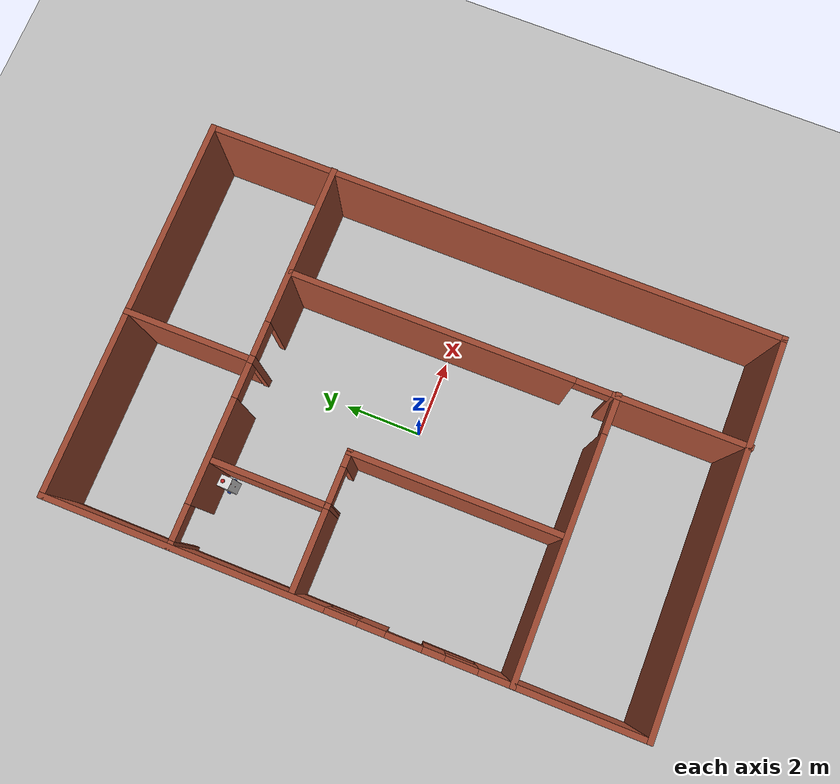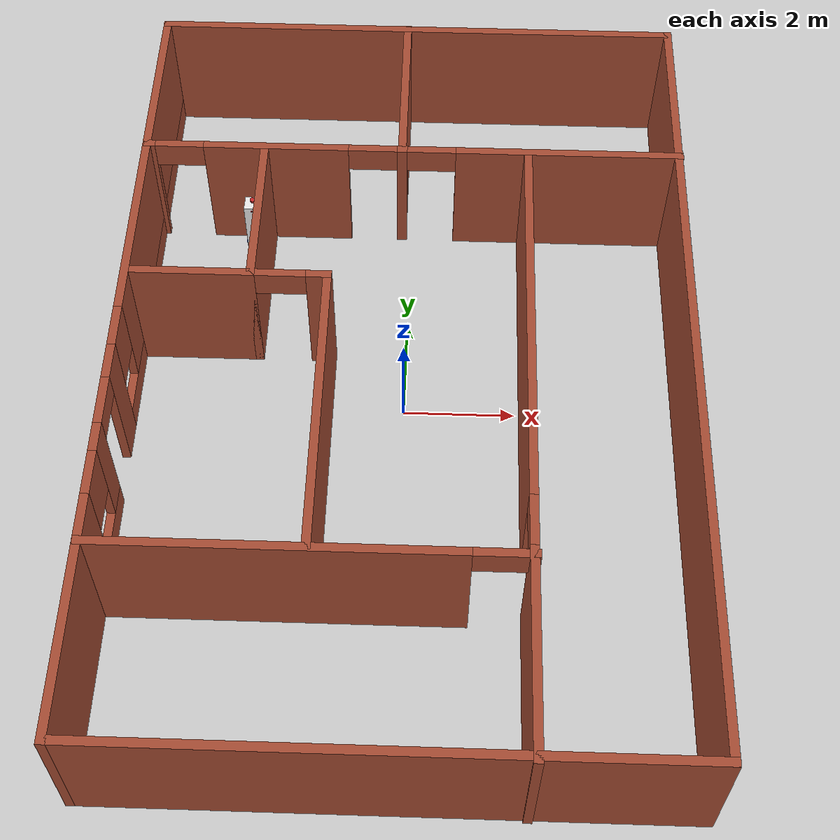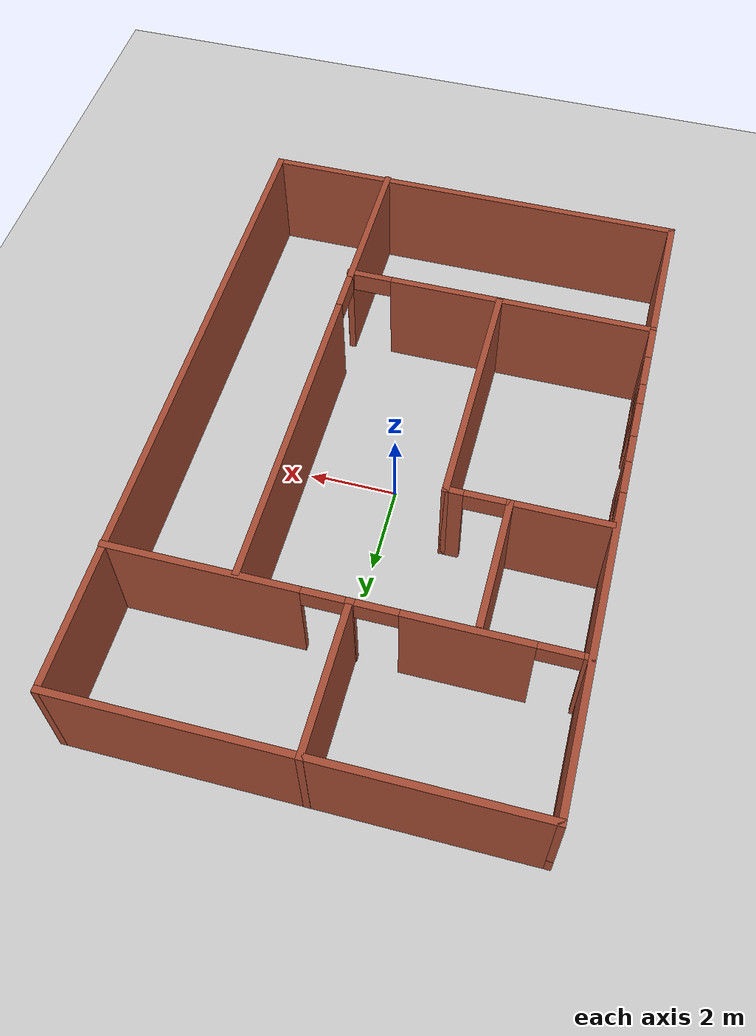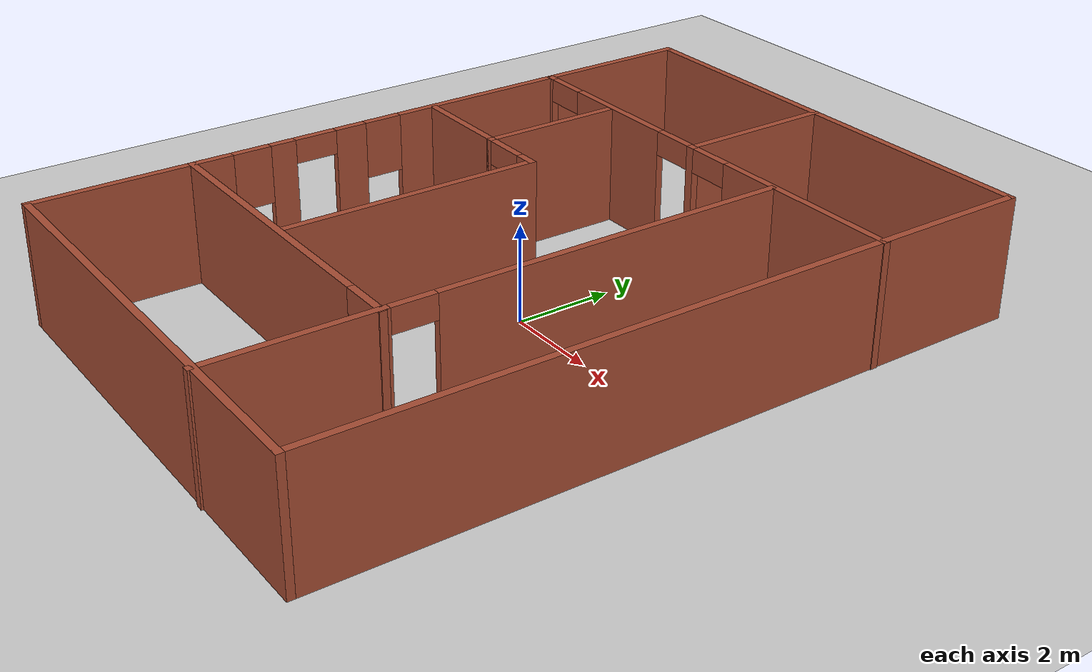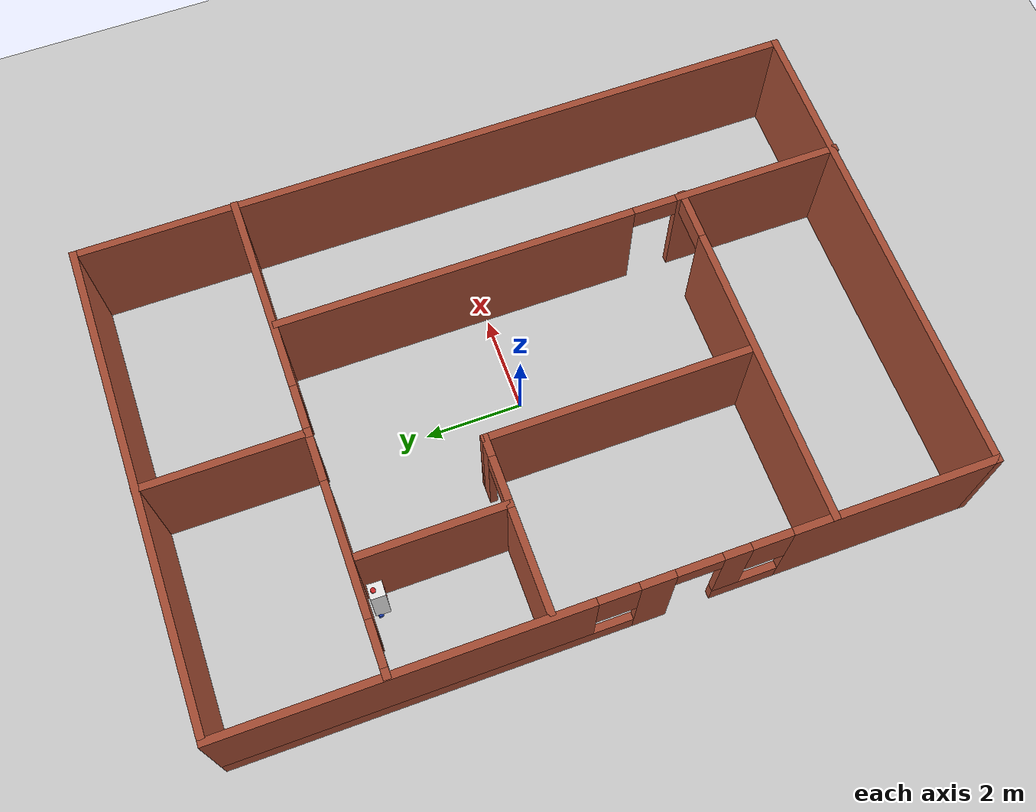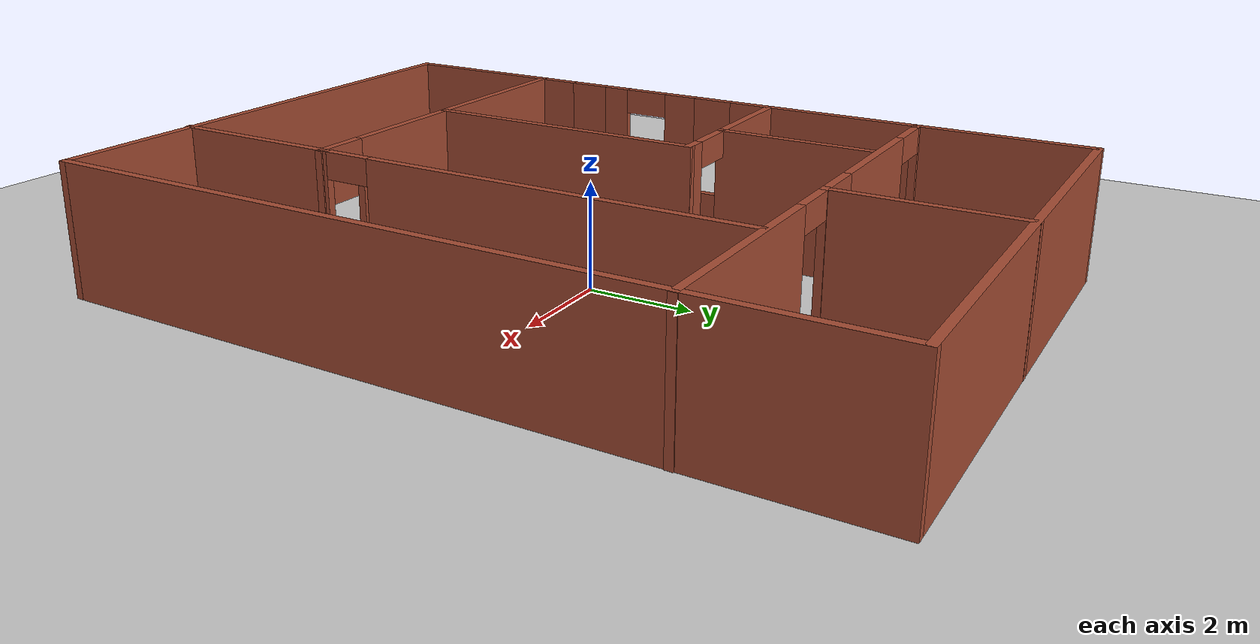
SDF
<sdf version="1.7">
 <world name="default">
  <light name="sun" type="directional">
   <pose>0 0 10 0 -0 0</pose>
   <diffuse>0.8 0.8 0.8 1</diffuse>
   <specular>0.2 0.2 0.2 1</specular>
   <attenuation>
    <range>1000</range>
    <constant>0.9</constant>
    <linear>0.01</linear>
    <quadratic>0.001</quadratic>
   </attenuation>
   <direction>-0.5 0.1 -0.9</direction>
   <spot><inner_angle>0</inner_angle><outer_angle>0</outer_angle><falloff>0</falloff></spot>
  </light>
  <model name="ground_plane">
   <static>1</static>
   <link name="link">
    <collision name="collision">
     <geometry><plane><normal>0 0 1</normal><size>100 100</size></plane></geometry>
     <surface><friction><ode><mu>100</mu><mu2>50</mu2></ode></friction></surface>
    </collision>
    <visual name="visual">
     <cast_shadows>0</cast_shadows>
     <geometry><plane><normal>0 0 1</normal><size>100 100</size></plane></geometry>
     <material>
      <script><uri>file://media/materials/scripts/gazebo.material</uri><name>Gazebo/Grey</name></script>
     </material>
    </visual>
   </link>
  </model>
  <gravity>0 0 -9.8</gravity>
  <magnetic_field>6e-06 2.3e-05 -4.2e-05</magnetic_field>
  <atmosphere type="adiabatic"/>
  <physics type="ode">
   <max_step_size>0.001</max_step_size>
   <real_time_factor>1</real_time_factor>
   <real_time_update_rate>1000</real_time_update_rate>
  </physics>
  <scene><ambient>0.4 0.4 0.4 1</ambient><background>0.7 0.7 0.7 1</background><shadows>1</shadows></scene>
  <spherical_coordinates>
   <surface_model>EARTH_WGS84</surface_model>
   <latitude_deg>0</latitude_deg>
   <longitude_deg>0</longitude_deg>
   <elevation>0</elevation>
   <heading_deg>0</heading_deg>
  </spherical_coordinates>
  <model name="robot">
   <link name="base_link">
    <inertial>
     <pose>0.055714 0 0.221429 0 -0 0</pose>
     <mass>0.7</mass>
     <inertia>
      <ixx>0.165584</ixx>
      <ixy>0</ixy>
      <ixz>0.00676071</ixz>
      <iyy>0.166621</iyy>
      <iyz>0</iyz>
      <izz>0.00876214</izz>
     </inertia>
    </inertial>
    <collision name="base_link_fixed_joint_lump__chassis_collision">
     <pose>0.05 0 0.575 0 -0 0</pose>
     <geometry><box><size>0.3 0.3 1.15</size></box></geometry>
    </collision>
    <collision name="base_link_fixed_joint_lump__caster_wheel_collision_1">
     <pose>0.14 0 0 0 -0 0</pose>
     <geometry><sphere><radius>0.05</radius></sphere></geometry>
     <surface><friction><ode><mu>0.001</mu><mu2>0.001</mu2></ode></friction></surface>
    </collision>
    <collision name="base_link_fixed_joint_lump__laser_frame_collision_2">
     <pose>0 0 1.175 0 -0 0</pose>
     <geometry><cylinder><length>0.04</length><radius>0.05</radius></cylinder></geometry>
    </collision>
    <visual name="base_link_fixed_joint_lump__chassis_visual">
     <pose>0.05 0 0.575 0 -0 0</pose>
     <geometry><box><size>0.3 0.3 1.15</size></box></geometry>
     <material>
      <script><name>Gazebo/White</name><uri>file://media/materials/scripts/gazebo.material</uri></script>
     </material>
    </visual>
    <visual name="base_link_fixed_joint_lump__camera1_link_visual_1">
     <pose>0.205 0 1.08 0 0.174533 0</pose>
     <geometry><box><size>0.01 0.03 0.03</size></box></geometry>
     <material>
      <script><name>Gazebo/Red</name><uri>file://media/materials/scripts/gazebo.material</uri></script>
     </material>
    </visual>
    <visual name="base_link_fixed_joint_lump__camera2_link_visual_2">
     <pose>0.205 0 0.58 0 0.174533 0</pose>
     <geometry><box><size>0.01 0.03 0.03</size></box></geometry>
     <material>
      <script><name>Gazebo/Red</name><uri>file://media/materials/scripts/gazebo.material</uri></script>
     </material>
    </visual>
    <visual name="base_link_fixed_joint_lump__caster_wheel_visual_3">
     <pose>0.14 0 0 0 -0 0</pose>
     <geometry><sphere><radius>0.05</radius></sphere></geometry>
     <material>
      <script><name>Gazebo/Black</name><uri>file://media/materials/scripts/gazebo.material</uri></script>
     </material>
    </visual>
    <visual name="base_link_fixed_joint_lump__laser_frame_visual_4">
     <pose>0 0 1.175 0 -0 0</pose>
     <geometry><cylinder><length>0.04</length><radius>0.05</radius></cylinder></geometry>
     <material>
      <script><name>Gazebo/Red</name><uri>file://media/materials/scripts/gazebo.material</uri></script>
     </material>
    </visual>
    <sensor name="camera1_sensor" type="camera">
     <visualize>1</visualize>
     <update_rate>10</update_rate>
     <camera>
      <horizontal_fov>1.089</horizontal_fov>
      <image><format>R8G8B8</format><width>640</width><height>480</height></image>
      <clip><near>0.05</near><far>8</far></clip>
     </camera>
     <plugin name="camera1_controller" filename="libgazebo_ros_camera.so">
      <frame_name>camera1_link_optical</frame_name>
      <camera_name>camera1</camera_name>
      <imageTopicName>camera1/image_raw</imageTopicName>
      <cameraInfoTopicName>camera1/camera_info</cameraInfoTopicName>
      <robotNamespace>/</robotNamespace>
     </plugin>
     <pose>0.205 0 1.08 0 0.174533 0</pose>
    </sensor>
    <sensor name="camera2_sensor" type="camera">
     <visualize>1</visualize>
     <update_rate>10</update_rate>
     <camera>
      <horizontal_fov>1.089</horizontal_fov>
      <image><format>R8G8B8</format><width>640</width><height>480</height></image>
      <clip><near>0.05</near><far>8</far></clip>
     </camera>
     <plugin name="camera2_controller" filename="libgazebo_ros_camera.so">
      <frame_name>camera2_link_optical</frame_name>
      <camera_name>camera2</camera_name>
      <imageTopicName>camera2/image_raw</imageTopicName>
      <cameraInfoTopicName>camera2/camera_info</cameraInfoTopicName>
      <robotNamespace>/</robotNamespace>
     </plugin>
     <pose>0.205 0 0.58 0 0.174533 0</pose>
    </sensor>
    <sensor name="laser" type="ray">
     <visualize>1</visualize>
     <update_rate>10</update_rate>
     <ray>
      <scan>
       <horizontal>
        <samples>360</samples>
        <resolution>1</resolution>
        <min_angle>0</min_angle>
        <max_angle>6.28319</max_angle>
       </horizontal>
       <vertical><samples>1</samples><min_angle>0</min_angle><max_angle>0</max_angle></vertical>
      </scan>
      <range><min>0.12</min><max>3.5</max><resolution>0.015</resolution></range>
      <noise><type>gaussian</type><mean>0</mean><stddev>0.01</stddev></noise>
     </ray>
     <plugin name="laser_controller" filename="libgazebo_ros_laser.so">
      <topicName>scan</topicName>
      <frameName>laser_frame</frameName>
      <robotNamespace>/</robotNamespace>
     </plugin>
     <pose>0 0 1.175 0 -0 0</pose>
    </sensor>
   </link>
   <joint name="left_wheel_joint" type="revolute">
    <pose relative_to="base_link">0 0.175 0 -1.5708 0 0</pose>
    <parent>base_link</parent>
    <child>left_wheel</child>
    <axis>
     <xyz>0 0 1</xyz>
     <limit><lower>-1e+16</lower><upper>1e+16</upper></limit>
     <dynamics><spring_reference>0</spring_reference><spring_stiffness>0</spring_stiffness></dynamics>
    </axis>
   </joint>
   <link name="left_wheel">
    <pose relative_to="left_wheel_joint">0 0 0 0 -0 0</pose>
    <inertial>
     <mass>0.1</mass>
     <inertia>
      <ixx>7.58333e-05</ixx>
      <ixy>0</ixy>
      <ixz>0</ixz>
      <iyy>7.58333e-05</iyy>
      <iyz>0</iyz>
      <izz>0.000125</izz>
     </inertia>
    </inertial>
    <collision name="left_wheel_collision">
     <geometry><cylinder><length>0.04</length><radius>0.05</radius></cylinder></geometry>
    </collision>
    <visual name="left_wheel_visual">
     <geometry><cylinder><length>0.04</length><radius>0.05</radius></cylinder></geometry>
     <material>
      <script><name>Gazebo/Blue</name><uri>file://media/materials/scripts/gazebo.material</uri></script>
     </material>
    </visual>
   </link>
   <joint name="right_wheel_joint" type="revolute">
    <pose relative_to="base_link">0 -0.175 0 1.5708 -0 0</pose>
    <parent>base_link</parent>
    <child>right_wheel</child>
    <axis>
     <xyz>0 0 -1</xyz>
     <limit><lower>-1e+16</lower><upper>1e+16</upper></limit>
     <dynamics><spring_reference>0</spring_reference><spring_stiffness>0</spring_stiffness></dynamics>
    </axis>
   </joint>
   <link name="right_wheel">
    <pose relative_to="right_wheel_joint">0 0 0 0 -0 0</pose>
    <inertial>
     <mass>0.1</mass>
     <inertia>
      <ixx>7.58333e-05</ixx>
      <ixy>0</ixy>
      <ixz>0</ixz>
      <iyy>7.58333e-05</iyy>
      <iyz>0</iyz>
      <izz>0.000125</izz>
     </inertia>
    </inertial>
    <collision name="right_wheel_collision">
     <geometry><cylinder><length>0.04</length><radius>0.05</radius></cylinder></geometry>
    </collision>
    <visual name="right_wheel_visual">
     <geometry><cylinder><length>0.04</length><radius>0.05</radius></cylinder></geometry>
     <material>
      <script><name>Gazebo/Blue</name><uri>file://media/materials/scripts/gazebo.material</uri></script>
     </material>
    </visual>
   </link>
   <plugin name="diff_drive" filename="libgazebo_ros_diff_drive.so">
    <leftJoint>left_wheel_joint</leftJoint>
    <rightJoint>right_wheel_joint</rightJoint>
    <wheelSeparation>0.35</wheelSeparation>
    <wheelDiameter>0.1</wheelDiameter>
    <wheelTorque>10</wheelTorque>
    <wheelAcceleration>2.0</wheelAcceleration>
    <updateRate>50</updateRate>
    <odometryFrame>odom</odometryFrame>
    <robotBaseFrame>base_link</robotBaseFrame>
    <commandTopic>cmd_vel</commandTopic>
    <odometryTopic>odom</odometryTopic>
    <publishOdom>1</publishOdom>
    <publishOdomTF>1</publishOdomTF>
    <publishWheelJointState>1</publishWheelJointState>
    <publishWheelTF>0</publishWheelTF>
    <robotNamespace>/</robotNamespace>
   </plugin>
   <frame name="camera1_optical_joint" attached_to="camera1_link"><pose>0 0 0 -1.5708 -0 -1.5708</pose></frame>
   <frame name="camera1_link_optical" attached_to="camera1_optical_joint"/>
   <frame name="camera1_joint" attached_to="chassis"><pose>0.305 0 1.08 0 0.174533 0</pose></frame>
   <frame name="camera1_link" attached_to="camera1_joint"/>
   <frame name="camera2_optical_joint" attached_to="camera2_link"><pose>0 0 0 -1.5708 -0 -1.5708</pose></frame>
   <frame name="camera2_link_optical" attached_to="camera2_optical_joint"/>
   <frame name="camera2_joint" attached_to="chassis"><pose>0.305 0 0.58 0 0.174533 0</pose></frame>
   <frame name="camera2_link" attached_to="camera2_joint"/>
   <frame name="caster_wheel_joint" attached_to="chassis"><pose>0.24 0 0 0 -0 0</pose></frame>
   <frame name="caster_wheel" attached_to="caster_wheel_joint"/>
   <frame name="laser_joint" attached_to="chassis"><pose>0.1 0 1.175 0 -0 0</pose></frame>
   <frame name="laser_frame" attached_to="laser_joint"/>
   <frame name="chassis_joint" attached_to="base_link"><pose>-0.1 0 0 0 -0 0</pose></frame>
   <frame name="chassis" attached_to="chassis_joint"/>
   <pose>-3.03358 3.97446 0.05 0 -2e-06 -1.59775</pose>
  </model>
  <model name="house_3">
   <pose>0.010948 -0.012786 0 0 -0 0</pose>
   <link name="Wall_1">
    <collision name="Wall_1_Collision">
     <geometry><box><size>10 0.15 2.5</size></box></geometry>
     <pose>0 0 1.25 0 -0 0</pose>
    </collision>
    <visual name="Wall_1_Visual">
     <pose>0 0 1.25 0 -0 0</pose>
     <geometry><box><size>10 0.15 2.5</size></box></geometry>
     <material>
      <script><uri>file://media/materials/scripts/gazebo.material</uri><name>Gazebo/Bricks</name></script>
      <ambient>1 1 1 1</ambient>
     </material>
     <meta><layer>0</layer></meta>
    </visual>
    <pose>-0.008662 7.44379 0 0 -0 0</pose>
   </link>
   <link name="Wall_12">
    <collision name="Wall_12_Collision">
     <geometry><box><size>3.25 0.15 2.5</size></box></geometry>
     <pose>0 0 1.25 0 -0 0</pose>
    </collision>
    <visual name="Wall_12_Visual">
     <pose>0 0 1.25 0 -0 0</pose>
     <geometry><box><size>3.25 0.15 2.5</size></box></geometry>
     <material>
      <script><uri>file://media/materials/scripts/gazebo.material</uri><name>Gazebo/Bricks</name></script>
      <ambient>1 1 1 1</ambient>
     </material>
     <meta><layer>0</layer></meta>
    </visual>
    <pose>-0.186983 5.89801 0 0 -0 -1.5708</pose>
   </link>
   <link name="Wall_14">
    <collision name="Wall_14_Collision">
     <geometry><box><size>2.25 0.15 2.5</size></box></geometry>
     <pose>0 0 1.25 0 -0 0</pose>
    </collision>
    <visual name="Wall_14_Visual">
     <pose>0 0 1.25 0 -0 0</pose>
     <geometry><box><size>2.25 0.15 2.5</size></box></geometry>
     <material>
      <script><uri>file://media/materials/scripts/gazebo.material</uri><name>Gazebo/Bricks</name></script>
      <ambient>1 1 1 1</ambient>
     </material>
     <meta><layer>0</layer></meta>
    </visual>
    <pose>-3.78742 1.20706 0 0 -0 0</pose>
   </link>
   <link name="Wall_15">
    <collision name="Wall_15_Collision">
     <geometry><box><size>3 0.15 2.5</size></box></geometry>
     <pose>0 0 1.25 0 -0 0</pose>
    </collision>
    <visual name="Wall_15_Visual">
     <pose>0 0 1.25 0 -0 0</pose>
     <geometry><box><size>3 0.15 2.5</size></box></geometry>
     <material>
      <script><uri>file://media/materials/scripts/gazebo.material</uri><name>Gazebo/Bricks</name></script>
      <ambient>1 1 1 1</ambient>
     </material>
     <meta><layer>0</layer></meta>
    </visual>
    <pose>-2.73741 2.63206 0 0 -0 1.5708</pose>
   </link>
   <link name="Wall_2">
    <collision name="Wall_2_Collision">
     <geometry><box><size>15 0.15 2.5</size></box></geometry>
     <pose>0 0 1.25 0 -0 0</pose>
    </collision>
    <visual name="Wall_2_Visual">
     <pose>0 0 1.25 0 -0 0</pose>
     <geometry><box><size>15 0.15 2.5</size></box></geometry>
     <material>
      <script><uri>file://media/materials/scripts/gazebo.material</uri><name>Gazebo/Bricks</name></script>
      <ambient>1 1 1 1</ambient>
     </material>
     <meta><layer>0</layer></meta>
    </visual>
    <pose>4.91634 0.018794 0 0 -0 -1.5708</pose>
   </link>
   <link name="Wall_21">
    <pose>2.14229 -1.64801 0 0 -0 -1.5708</pose>
    <visual name="Wall_21_Visual_0">
     <pose>-2.20163 0 1.25 0 -0 0</pose>
     <geometry><box><size>7.34674 0.15 2.5</size></box></geometry>
     <material>
      <script><uri>file://media/materials/scripts/gazebo.material</uri><name>Gazebo/Bricks</name></script>
      <ambient>1 1 1 1</ambient>
     </material>
     <meta><layer>0</layer></meta>
    </visual>
    <collision name="Wall_21_Collision_0">
     <geometry><box><size>7.34674 0.15 2.5</size></box></geometry>
     <pose>-2.20163 0 1.25 0 -0 0</pose>
    </collision>
    <visual name="Wall_21_Visual_1">
     <pose>4.12337 0 1.25 0 -0 0</pose>
     <geometry><box><size>3.50326 0.15 2.5</size></box></geometry>
     <material>
      <script><uri>file://media/materials/scripts/gazebo.material</uri><name>Gazebo/Bricks</name></script>
      <ambient>1 1 1 1</ambient>
     </material>
     <meta><layer>0</layer></meta>
    </visual>
    <collision name="Wall_21_Collision_1">
     <geometry><box><size>3.50326 0.15 2.5</size></box></geometry>
     <pose>4.12337 0 1.25 0 -0 0</pose>
    </collision>
    <visual name="Wall_21_Visual_2">
     <pose>1.92174 0 2.25 0 -0 0</pose>
     <geometry><box><size>0.9 0.15 0.5</size></box></geometry>
     <material>
      <script><uri>file://media/materials/scripts/gazebo.material</uri><name>Gazebo/Bricks</name></script>
      <ambient>1 1 1 1</ambient>
     </material>
     <meta><layer>0</layer></meta>
    </visual>
    <collision name="Wall_21_Collision_2">
     <geometry><box><size>0.9 0.15 0.5</size></box></geometry>
     <pose>1.92174 0 2.25 0 -0 0</pose>
    </collision>
   </link>
   <link name="Wall_26">
    <pose>-1.38017 -4.17265 0 0 -0 0</pose>
    <visual name="Wall_26_Visual_0">
     <pose>-0.531341 0 1.25 0 -0 0</pose>
     <geometry><box><size>6.18732 0.15 2.5</size></box></geometry>
     <material>
      <script><uri>file://media/materials/scripts/gazebo.material</uri><name>Gazebo/Bricks</name></script>
      <ambient>1 1 1 1</ambient>
     </material>
     <meta><layer>0</layer></meta>
    </visual>
    <collision name="Wall_26_Collision_0">
     <geometry><box><size>6.18732 0.15 2.5</size></box></geometry>
     <pose>-0.531341 0 1.25 0 -0 0</pose>
    </collision>
    <visual name="Wall_26_Visual_1">
     <pose>3.54366 0 1.25 0 -0 0</pose>
     <geometry><box><size>0.162681 0.15 2.5</size></box></geometry>
     <material>
      <script><uri>file://media/materials/scripts/gazebo.material</uri><name>Gazebo/Bricks</name></script>
      <ambient>1 1 1 1</ambient>
     </material>
     <meta><layer>0</layer></meta>
    </visual>
    <collision name="Wall_26_Collision_1">
     <geometry><box><size>0.162681 0.15 2.5</size></box></geometry>
     <pose>3.54366 0 1.25 0 -0 0</pose>
    </collision>
    <visual name="Wall_26_Visual_2">
     <pose>3.01232 0 2.25 0 -0 0</pose>
     <geometry><box><size>0.9 0.15 0.5</size></box></geometry>
     <material>
      <script><uri>file://media/materials/scripts/gazebo.material</uri><name>Gazebo/Bricks</name></script>
      <ambient>1 1 1 1</ambient>
     </material>
     <meta><layer>0</layer></meta>
    </visual>
    <collision name="Wall_26_Collision_2">
     <geometry><box><size>0.9 0.15 0.5</size></box></geometry>
     <pose>3.01232 0 2.25 0 -0 0</pose>
    </collision>
   </link>
   <link name="Wall_28">
    <pose>-2.06242 1.20706 0 0 -0 0</pose>
    <visual name="Wall_28_Visual_0">
     <pose>-0.677355 0 1.25 0 -0 0</pose>
     <geometry><box><size>0.14529 0.15 2.5</size></box></geometry>
     <material>
      <script><uri>file://media/materials/scripts/gazebo.material</uri><name>Gazebo/Bricks</name></script>
      <ambient>1 1 1 1</ambient>
     </material>
     <meta><layer>0</layer></meta>
    </visual>
    <collision name="Wall_28_Collision_0">
     <geometry><box><size>0.14529 0.15 2.5</size></box></geometry>
     <pose>-0.677355 0 1.25 0 -0 0</pose>
    </collision>
    <visual name="Wall_28_Visual_1">
     <pose>0.522645 0 1.25 0 -0 0</pose>
     <geometry><box><size>0.45471 0.15 2.5</size></box></geometry>
     <material>
      <script><uri>file://media/materials/scripts/gazebo.material</uri><name>Gazebo/Bricks</name></script>
      <ambient>1 1 1 1</ambient>
     </material>
     <meta><layer>0</layer></meta>
    </visual>
    <collision name="Wall_28_Collision_1">
     <geometry><box><size>0.45471 0.15 2.5</size></box></geometry>
     <pose>0.522645 0 1.25 0 -0 0</pose>
    </collision>
    <visual name="Wall_28_Visual_2">
     <pose>-0.15471 0 2.25 0 -0 0</pose>
     <geometry><box><size>0.9 0.15 0.5</size></box></geometry>
     <material>
      <script><uri>file://media/materials/scripts/gazebo.material</uri><name>Gazebo/Bricks</name></script>
      <ambient>1 1 1 1</ambient>
     </material>
     <meta><layer>0</layer></meta>
    </visual>
    <collision name="Wall_28_Collision_2">
     <geometry><box><size>0.9 0.15 0.5</size></box></geometry>
     <pose>-0.15471 0 2.25 0 -0 0</pose>
    </collision>
   </link>
   <link name="Wall_29">
    <collision name="Wall_29_Collision">
     <geometry><box><size>5.5 0.15 2.5</size></box></geometry>
     <pose>0 0 1.25 0 -0 0</pose>
    </collision>
    <visual name="Wall_29_Visual">
     <pose>0 0 1.25 0 -0 0</pose>
     <geometry><box><size>5.5 0.15 2.5</size></box></geometry>
     <material>
      <script><uri>file://media/materials/scripts/gazebo.material</uri><name>Gazebo/Bricks</name></script>
      <ambient>1 1 1 1</ambient>
     </material>
     <meta><layer>0</layer></meta>
    </visual>
    <pose>-1.38742 -1.46794 0 0 -0 -1.5708</pose>
   </link>
   <link name="Wall_3">
    <collision name="Wall_3_Collision">
     <geometry><box><size>10 0.15 2.5</size></box></geometry>
     <pose>0 0 1.25 0 -0 0</pose>
    </collision>
    <visual name="Wall_3_Visual">
     <pose>0 0 1.25 0 -0 0</pose>
     <geometry><box><size>10 0.15 2.5</size></box></geometry>
     <material>
      <script><uri>file://media/materials/scripts/gazebo.material</uri><name>Gazebo/Bricks</name></script>
      <ambient>1 1 1 1</ambient>
     </material>
     <meta><layer>0</layer></meta>
    </visual>
    <pose>-0.008662 -7.40621 0 0 -0 3.14159</pose>
   </link>
   <link name="Wall_4">
    <pose>-4.93366 0.018794 0 0 -0 1.5708</pose>
    <visual name="Wall_4_Visual_0">
     <pose>-5.43123 0 1.25 0 -0 0</pose>
     <geometry><box><size>4.13754 0.15 2.5</size></box></geometry>
     <material>
      <script><uri>file://media/materials/scripts/gazebo.material</uri><name>Gazebo/Bricks</name></script>
      <ambient>1 1 1 1</ambient>
     </material>
     <meta><layer>0</layer></meta>
    </visual>
    <collision name="Wall_4_Collision_0">
     <geometry><box><size>4.13754 0.15 2.5</size></box></geometry>
     <pose>-5.43123 0 1.25 0 -0 0</pose>
    </collision>
    <visual name="Wall_4_Visual_1">
     <pose>-0.780935 0 1.25 0 -0 0</pose>
     <geometry><box><size>0.680435 0.15 2.5</size></box></geometry>
     <material>
      <script><uri>file://media/materials/scripts/gazebo.material</uri><name>Gazebo/Bricks</name></script>
      <ambient>1 1 1 1</ambient>
     </material>
     <meta><layer>0</layer></meta>
    </visual>
    <collision name="Wall_4_Collision_1">
     <geometry><box><size>0.680435 0.15 2.5</size></box></geometry>
     <pose>-0.780935 0 1.25 0 -0 0</pose>
    </collision>
    <visual name="Wall_4_Visual_2">
     <pose>-2.69181 0 0.25 0 -0 0</pose>
     <geometry><box><size>1.3413 0.15 0.5</size></box></geometry>
     <material>
      <script><uri>file://media/materials/scripts/gazebo.material</uri><name>Gazebo/Bricks</name></script>
      <ambient>1 1 1 1</ambient>
     </material>
     <meta><layer>0</layer></meta>
    </visual>
    <collision name="Wall_4_Collision_2">
     <geometry><box><size>1.3413 0.15 0.5</size></box></geometry>
     <pose>-2.69181 0 0.25 0 -0 0</pose>
    </collision>
    <visual name="Wall_4_Visual_3">
     <pose>3.52964 0 0.25 0 -0 0</pose>
     <geometry><box><size>7.94072 0.15 0.5</size></box></geometry>
     <material>
      <script><uri>file://media/materials/scripts/gazebo.material</uri><name>Gazebo/Bricks</name></script>
      <ambient>1 1 1 1</ambient>
     </material>
     <meta><layer>0</layer></meta>
    </visual>
    <collision name="Wall_4_Collision_3">
     <geometry><box><size>7.94072 0.15 0.5</size></box></geometry>
     <pose>3.52964 0 0.25 0 -0 0</pose>
    </collision>
    <visual name="Wall_4_Visual_4">
     <pose>-2.29181 0 1.5 0 -0 0</pose>
     <geometry><box><size>0.541304 0.15 2</size></box></geometry>
     <material>
      <script><uri>file://media/materials/scripts/gazebo.material</uri><name>Gazebo/Bricks</name></script>
      <ambient>1 1 1 1</ambient>
     </material>
     <meta><layer>0</layer></meta>
    </visual>
    <collision name="Wall_4_Collision_4">
     <geometry><box><size>0.541304 0.15 2</size></box></geometry>
     <pose>-2.29181 0 1.5 0 -0 0</pose>
    </collision>
    <visual name="Wall_4_Visual_5">
     <pose>-2.29181 0 1.5 0 -0 0</pose>
     <geometry><box><size>0.541304 0.15 2</size></box></geometry>
     <material>
      <script><uri>file://media/materials/scripts/gazebo.material</uri><name>Gazebo/Bricks</name></script>
      <ambient>1 1 1 1</ambient>
     </material>
     <meta><layer>0</layer></meta>
    </visual>
    <collision name="Wall_4_Collision_5">
     <geometry><box><size>0.541304 0.15 2</size></box></geometry>
     <pose>-2.29181 0 1.5 0 -0 0</pose>
    </collision>
    <visual name="Wall_4_Visual_6">
     <pose>3.92964 0 1.5 0 -0 0</pose>
     <geometry><box><size>7.14072 0.15 2</size></box></geometry>
     <material>
      <script><uri>file://media/materials/scripts/gazebo.material</uri><name>Gazebo/Bricks</name></script>
      <ambient>1 1 1 1</ambient>
     </material>
     <meta><layer>0</layer></meta>
    </visual>
    <collision name="Wall_4_Collision_6">
     <geometry><box><size>7.14072 0.15 2</size></box></geometry>
     <pose>3.92964 0 1.5 0 -0 0</pose>
    </collision>
    <visual name="Wall_4_Visual_7">
     <pose>-2.96246 0 1.9 0 -0 0</pose>
     <geometry><box><size>0.8 0.15 1.2</size></box></geometry>
     <material>
      <script><uri>file://media/materials/scripts/gazebo.material</uri><name>Gazebo/Bricks</name></script>
      <ambient>1 1 1 1</ambient>
     </material>
     <meta><layer>0</layer></meta>
    </visual>
    <collision name="Wall_4_Collision_7">
     <geometry><box><size>0.8 0.15 1.2</size></box></geometry>
     <pose>-2.96246 0 1.9 0 -0 0</pose>
    </collision>
    <visual name="Wall_4_Visual_8">
     <pose>-0.040718 0 1.9 0 -0 0</pose>
     <geometry><box><size>0.8 0.15 1.2</size></box></geometry>
     <material>
      <script><uri>file://media/materials/scripts/gazebo.material</uri><name>Gazebo/Bricks</name></script>
      <ambient>1 1 1 1</ambient>
     </material>
     <meta><layer>0</layer></meta>
    </visual>
    <collision name="Wall_4_Collision_8">
     <geometry><box><size>0.8 0.15 1.2</size></box></geometry>
     <pose>-0.040718 0 1.9 0 -0 0</pose>
    </collision>
    <visual name="Wall_4_Visual_9">
     <pose>-1.57115 0 2.25 0 -0 0</pose>
     <geometry><box><size>0.9 0.15 0.5</size></box></geometry>
     <material>
      <script><uri>file://media/materials/scripts/gazebo.material</uri><name>Gazebo/Bricks</name></script>
      <ambient>1 1 1 1</ambient>
     </material>
     <meta><layer>0</layer></meta>
    </visual>
    <collision name="Wall_4_Collision_9">
     <geometry><box><size>0.9 0.15 0.5</size></box></geometry>
     <pose>-1.57115 0 2.25 0 -0 0</pose>
    </collision>
    <visual name="Wall_4_Visual_10">
     <pose>-1.57115 0 2.25 0 -0 0</pose>
     <geometry><box><size>0.9 0.15 0.5</size></box></geometry>
     <material>
      <script><uri>file://media/materials/scripts/gazebo.material</uri><name>Gazebo/Bricks</name></script>
      <ambient>1 1 1 1</ambient>
     </material>
     <meta><layer>0</layer></meta>
    </visual>
    <collision name="Wall_4_Collision_10">
     <geometry><box><size>0.9 0.15 0.5</size></box></geometry>
     <pose>-1.57115 0 2.25 0 -0 0</pose>
    </collision>
   </link>
   <link name="Wall_8">
    <pose>0.008663 4.21479 0 0 -0 0</pose>
    <visual name="Wall_8_Visual_0">
     <pose>-4.89297 0 1.25 0 -0 0</pose>
     <geometry><box><size>0.214066 0.15 2.5</size></box></geometry>
     <material>
      <script><uri>file://media/materials/scripts/gazebo.material</uri><name>Gazebo/Bricks</name></script>
      <ambient>1 1 1 1</ambient>
     </material>
     <meta><layer>0</layer></meta>
    </visual>
    <collision name="Wall_8_Collision_0">
     <geometry><box><size>0.214066 0.15 2.5</size></box></geometry>
     <pose>-4.89297 0 1.25 0 -0 0</pose>
    </collision>
    <visual name="Wall_8_Visual_1">
     <pose>-2.53883 0 1.25 0 -0 0</pose>
     <geometry><box><size>2.6942 0.15 2.5</size></box></geometry>
     <material>
      <script><uri>file://media/materials/scripts/gazebo.material</uri><name>Gazebo/Bricks</name></script>
      <ambient>1 1 1 1</ambient>
     </material>
     <meta><layer>0</layer></meta>
    </visual>
    <collision name="Wall_8_Collision_1">
     <geometry><box><size>2.6942 0.15 2.5</size></box></geometry>
     <pose>-2.53883 0 1.25 0 -0 0</pose>
    </collision>
    <visual name="Wall_8_Visual_2">
     <pose>-0.196803 0 1.25 0 -0 0</pose>
     <geometry><box><size>0.189855 0.15 2.5</size></box></geometry>
     <material>
      <script><uri>file://media/materials/scripts/gazebo.material</uri><name>Gazebo/Bricks</name></script>
      <ambient>1 1 1 1</ambient>
     </material>
     <meta><layer>0</layer></meta>
    </visual>
    <collision name="Wall_8_Collision_2">
     <geometry><box><size>0.189855 0.15 2.5</size></box></geometry>
     <pose>-0.196803 0 1.25 0 -0 0</pose>
    </collision>
    <visual name="Wall_8_Visual_3">
     <pose>2.89906 0 1.25 0 -0 0</pose>
     <geometry><box><size>4.20188 0.15 2.5</size></box></geometry>
     <material>
      <script><uri>file://media/materials/scripts/gazebo.material</uri><name>Gazebo/Bricks</name></script>
      <ambient>1 1 1 1</ambient>
     </material>
     <meta><layer>0</layer></meta>
    </visual>
    <collision name="Wall_8_Collision_3">
     <geometry><box><size>4.20188 0.15 2.5</size></box></geometry>
     <pose>2.89906 0 1.25 0 -0 0</pose>
    </collision>
    <visual name="Wall_8_Visual_4">
     <pose>-4.33593 0 2.25 0 -0 0</pose>
     <geometry><box><size>0.9 0.15 0.5</size></box></geometry>
     <material>
      <script><uri>file://media/materials/scripts/gazebo.material</uri><name>Gazebo/Bricks</name></script>
      <ambient>1 1 1 1</ambient>
     </material>
     <meta><layer>0</layer></meta>
    </visual>
    <collision name="Wall_8_Collision_4">
     <geometry><box><size>0.9 0.15 0.5</size></box></geometry>
     <pose>-4.33593 0 2.25 0 -0 0</pose>
    </collision>
    <visual name="Wall_8_Visual_5">
     <pose>-0.741731 0 2.25 0 -0 0</pose>
     <geometry><box><size>0.9 0.15 0.5</size></box></geometry>
     <material>
      <script><uri>file://media/materials/scripts/gazebo.material</uri><name>Gazebo/Bricks</name></script>
      <ambient>1 1 1 1</ambient>
     </material>
     <meta><layer>0</layer></meta>
    </visual>
    <collision name="Wall_8_Collision_5">
     <geometry><box><size>0.9 0.15 0.5</size></box></geometry>
     <pose>-0.741731 0 2.25 0 -0 0</pose>
    </collision>
    <visual name="Wall_8_Visual_6">
     <pose>0.348124 0 2.25 0 -0 0</pose>
     <geometry><box><size>0.9 0.15 0.5</size></box></geometry>
     <material>
      <script><uri>file://media/materials/scripts/gazebo.material</uri><name>Gazebo/Bricks</name></script>
      <ambient>1 1 1 1</ambient>
     </material>
     <meta><layer>0</layer></meta>
    </visual>
    <collision name="Wall_8_Collision_6">
     <geometry><box><size>0.9 0.15 0.5</size></box></geometry>
     <pose>0.348124 0 2.25 0 -0 0</pose>
    </collision>
   </link>
   <static>1</static>
  </model>
 </world>
</sdf>
